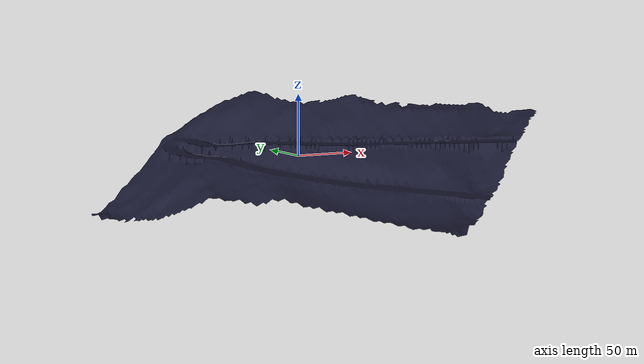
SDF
<?xml version='1.0'?>
<sdf version='1.6'>
  <model name='terrain'>
    <static>1</static>
    <link name='link'>
      <collision name='collision'>
        <geometry>
          <mesh>
            <scale>50 50 50</scale>
            <uri>model://world2/meshes/terrain_raster2.dae</uri>
          </mesh>
        </geometry>
      </collision>
      <visual name='visual'>
        <cast_shadows>0</cast_shadows>
        <geometry>
          <mesh>
            <scale>50 50 50</scale>
            <uri>model://world2/meshes/terrain_raster2.dae</uri>
          </mesh>
        </geometry>
        <!-- add this material tag for white overlay -->
        <material>
          <ambient>0.1 0.1 0.1 1</ambient>
          <diffuse>0.1 0.1 0.2 1</diffuse>
          <specular>0 0 0 0</specular>
          <emissive>1 1 1 1</emissive>
        </material>
      </visual>
      <self_collide>0</self_collide>
      <enable_wind>0</enable_wind>
      <kinematic>0</kinematic>
    </link>
  </model>
</sdf>
